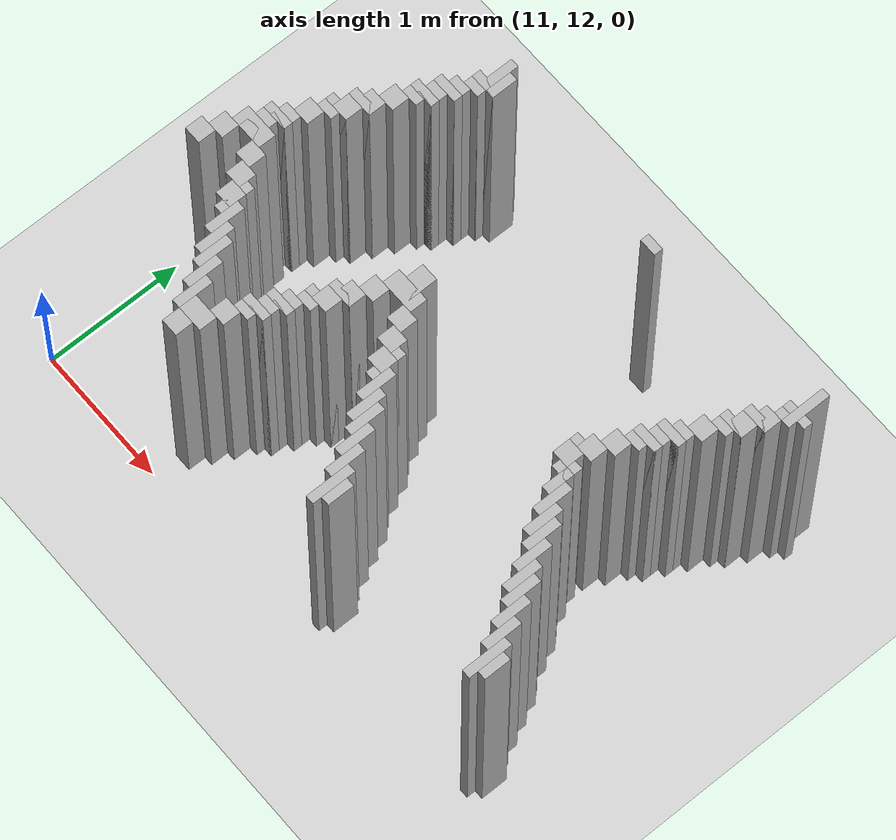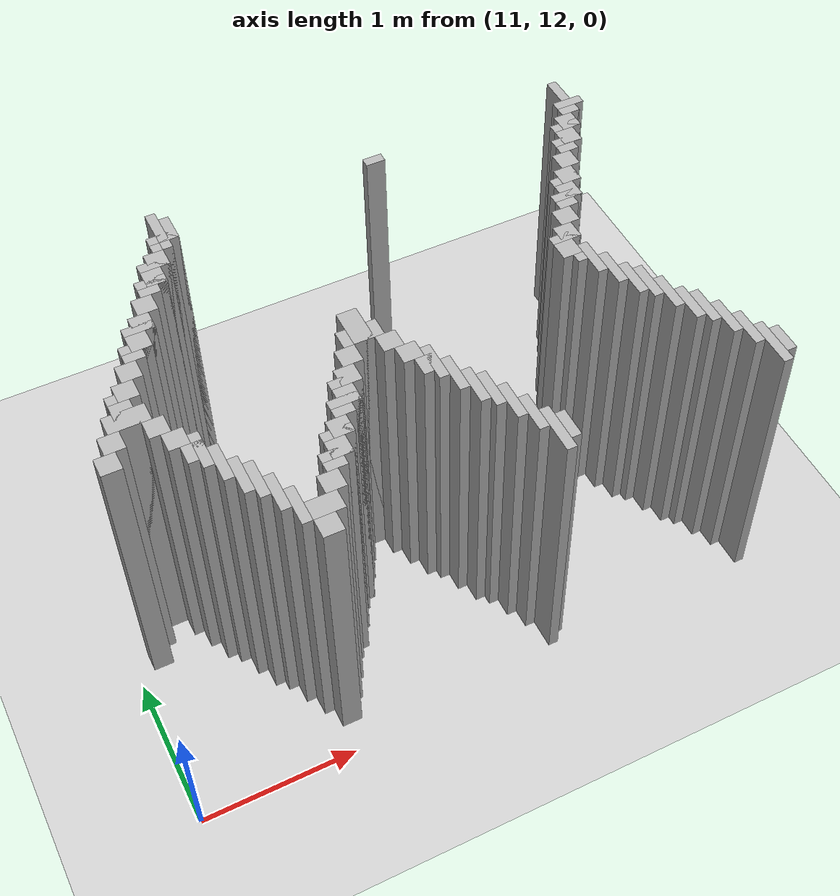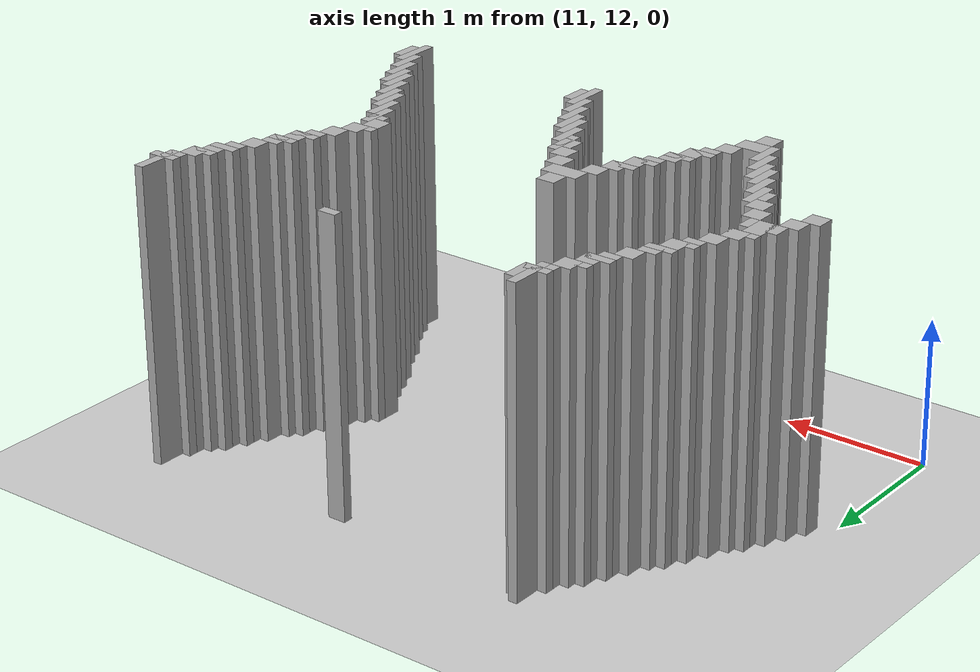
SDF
<sdf version="1.6">
 <world name="slam_world">
  <model name="ground_plane">
   <static>true</static>
   <link name="link">
    <collision name="collision">
     <geometry><plane><normal>0 0 1</normal><size>100 100</size></plane></geometry>
    </collision>
    <visual name="visual">
     <geometry><plane><normal>0 0 1</normal><size>100 100</size></plane></geometry>
     <material>
      <ambient>0.8 0.8 0.8 1</ambient>
      <diffuse>0.8 0.8 0.8 1</diffuse>
      <specular>0.8 0.8 0.8 1</specular>
     </material>
    </visual>
   </link>
  </model>
  <model name="wall_890">
   <static>true</static>
   <pose>12.03191489361702 14.712765957446807 1.0 0 0 0</pose>
   <link name="link">
    <collision name="collision">
     <geometry><box><size>0.06382978723404255 0.3191489361702127 2.0</size></box></geometry>
    </collision>
    <visual name="visual">
     <geometry><box><size>0.06382978723404255 0.3191489361702127 2.0</size></box></geometry>
     <material><ambient>0.5 0.5 0.5 1</ambient><diffuse>0.7 0.7 0.7 1</diffuse></material>
    </visual>
   </link>
  </model>
  <model name="wall_892">
   <static>true</static>
   <pose>14.840425531914892 14.712765957446807 1.0 0 0 0</pose>
   <link name="link">
    <collision name="collision">
     <geometry><box><size>0.06382978723404255 0.3191489361702127 2.0</size></box></geometry>
    </collision>
    <visual name="visual">
     <geometry><box><size>0.06382978723404255 0.3191489361702127 2.0</size></box></geometry>
     <material><ambient>0.5 0.5 0.5 1</ambient><diffuse>0.7 0.7 0.7 1</diffuse></material>
    </visual>
   </link>
  </model>
  <model name="wall_895">
   <static>true</static>
   <pose>12.095744680851062 14.712765957446807 1.0 0 0 0</pose>
   <link name="link">
    <collision name="collision">
     <geometry><box><size>0.06382978723404255 0.19148936170212766 2.0</size></box></geometry>
    </collision>
    <visual name="visual">
     <geometry><box><size>0.06382978723404255 0.19148936170212766 2.0</size></box></geometry>
     <material><ambient>0.5 0.5 0.5 1</ambient><diffuse>0.7 0.7 0.7 1</diffuse></material>
    </visual>
   </link>
  </model>
  <model name="wall_902">
   <static>true</static>
   <pose>13.468085106382977 14.712765957446807 1.0 0 0 0</pose>
   <link name="link">
    <collision name="collision">
     <geometry><box><size>0.1276595744680851 0.06382978723404255 2.0</size></box></geometry>
    </collision>
    <visual name="visual">
     <geometry><box><size>0.1276595744680851 0.06382978723404255 2.0</size></box></geometry>
     <material><ambient>0.5 0.5 0.5 1</ambient><diffuse>0.7 0.7 0.7 1</diffuse></material>
    </visual>
   </link>
  </model>
  <model name="wall_908">
   <static>true</static>
   <pose>12.03191489361702 14.648936170212766 1.0 0 0 0</pose>
   <link name="link">
    <collision name="collision">
     <geometry><box><size>0.19148936170212766 0.06382978723404255 2.0</size></box></geometry>
    </collision>
    <visual name="visual">
     <geometry><box><size>0.19148936170212766 0.06382978723404255 2.0</size></box></geometry>
     <material><ambient>0.5 0.5 0.5 1</ambient><diffuse>0.7 0.7 0.7 1</diffuse></material>
    </visual>
   </link>
  </model>
  <model name="wall_909">
   <static>true</static>
   <pose>14.840425531914892 14.648936170212766 1.0 0 0 0</pose>
   <link name="link">
    <collision name="collision">
     <geometry><box><size>0.19148936170212766 0.06382978723404255 2.0</size></box></geometry>
    </collision>
    <visual name="visual">
     <geometry><box><size>0.19148936170212766 0.06382978723404255 2.0</size></box></geometry>
     <material><ambient>0.5 0.5 0.5 1</ambient><diffuse>0.7 0.7 0.7 1</diffuse></material>
    </visual>
   </link>
  </model>
  <model name="wall_914">
   <static>true</static>
   <pose>11.999999999999998 14.585106382978722 1.0 0 0 0</pose>
   <link name="link">
    <collision name="collision">
     <geometry><box><size>0.1276595744680851 0.06382978723404255 2.0</size></box></geometry>
    </collision>
    <visual name="visual">
     <geometry><box><size>0.1276595744680851 0.06382978723404255 2.0</size></box></geometry>
     <material><ambient>0.5 0.5 0.5 1</ambient><diffuse>0.7 0.7 0.7 1</diffuse></material>
    </visual>
   </link>
  </model>
  <model name="wall_915">
   <static>true</static>
   <pose>14.808510638297872 14.585106382978722 1.0 0 0 0</pose>
   <link name="link">
    <collision name="collision">
     <geometry><box><size>0.1276595744680851 0.06382978723404255 2.0</size></box></geometry>
    </collision>
    <visual name="visual">
     <geometry><box><size>0.1276595744680851 0.06382978723404255 2.0</size></box></geometry>
     <material><ambient>0.5 0.5 0.5 1</ambient><diffuse>0.7 0.7 0.7 1</diffuse></material>
    </visual>
   </link>
  </model>
  <model name="wall_922">
   <static>true</static>
   <pose>11.936170212765957 14.489361702127658 1.0 0 0 0</pose>
   <link name="link">
    <collision name="collision">
     <geometry><box><size>0.1276595744680851 0.1276595744680851 2.0</size></box></geometry>
    </collision>
    <visual name="visual">
     <geometry><box><size>0.1276595744680851 0.1276595744680851 2.0</size></box></geometry>
     <material><ambient>0.5 0.5 0.5 1</ambient><diffuse>0.7 0.7 0.7 1</diffuse></material>
    </visual>
   </link>
  </model>
  <model name="wall_923">
   <static>true</static>
   <pose>14.744680851063828 14.489361702127658 1.0 0 0 0</pose>
   <link name="link">
    <collision name="collision">
     <geometry><box><size>0.1276595744680851 0.1276595744680851 2.0</size></box></geometry>
    </collision>
    <visual name="visual">
     <geometry><box><size>0.1276595744680851 0.1276595744680851 2.0</size></box></geometry>
     <material><ambient>0.5 0.5 0.5 1</ambient><diffuse>0.7 0.7 0.7 1</diffuse></material>
    </visual>
   </link>
  </model>
  <model name="wall_930">
   <static>true</static>
   <pose>11.904255319148936 14.457446808510637 1.0 0 0 0</pose>
   <link name="link">
    <collision name="collision">
     <geometry><box><size>0.19148936170212766 0.06382978723404255 2.0</size></box></geometry>
    </collision>
    <visual name="visual">
     <geometry><box><size>0.19148936170212766 0.06382978723404255 2.0</size></box></geometry>
     <material><ambient>0.5 0.5 0.5 1</ambient><diffuse>0.7 0.7 0.7 1</diffuse></material>
    </visual>
   </link>
  </model>
  <model name="wall_931">
   <static>true</static>
   <pose>14.712765957446807 14.457446808510637 1.0 0 0 0</pose>
   <link name="link">
    <collision name="collision">
     <geometry><box><size>0.19148936170212766 0.06382978723404255 2.0</size></box></geometry>
    </collision>
    <visual name="visual">
     <geometry><box><size>0.19148936170212766 0.06382978723404255 2.0</size></box></geometry>
     <material><ambient>0.5 0.5 0.5 1</ambient><diffuse>0.7 0.7 0.7 1</diffuse></material>
    </visual>
   </link>
  </model>
  <model name="wall_938">
   <static>true</static>
   <pose>11.872340425531913 14.361702127659573 1.0 0 0 0</pose>
   <link name="link">
    <collision name="collision">
     <geometry><box><size>0.1276595744680851 0.1276595744680851 2.0</size></box></geometry>
    </collision>
    <visual name="visual">
     <geometry><box><size>0.1276595744680851 0.1276595744680851 2.0</size></box></geometry>
     <material><ambient>0.5 0.5 0.5 1</ambient><diffuse>0.7 0.7 0.7 1</diffuse></material>
    </visual>
   </link>
  </model>
  <model name="wall_939">
   <static>true</static>
   <pose>14.680851063829786 14.361702127659573 1.0 0 0 0</pose>
   <link name="link">
    <collision name="collision">
     <geometry><box><size>0.1276595744680851 0.1276595744680851 2.0</size></box></geometry>
    </collision>
    <visual name="visual">
     <geometry><box><size>0.1276595744680851 0.1276595744680851 2.0</size></box></geometry>
     <material><ambient>0.5 0.5 0.5 1</ambient><diffuse>0.7 0.7 0.7 1</diffuse></material>
    </visual>
   </link>
  </model>
  <model name="wall_946">
   <static>true</static>
   <pose>11.840425531914892 14.329787234042552 1.0 0 0 0</pose>
   <link name="link">
    <collision name="collision">
     <geometry><box><size>0.19148936170212766 0.06382978723404255 2.0</size></box></geometry>
    </collision>
    <visual name="visual">
     <geometry><box><size>0.19148936170212766 0.06382978723404255 2.0</size></box></geometry>
     <material><ambient>0.5 0.5 0.5 1</ambient><diffuse>0.7 0.7 0.7 1</diffuse></material>
    </visual>
   </link>
  </model>
  <model name="wall_947">
   <static>true</static>
   <pose>14.648936170212766 14.329787234042552 1.0 0 0 0</pose>
   <link name="link">
    <collision name="collision">
     <geometry><box><size>0.19148936170212766 0.06382978723404255 2.0</size></box></geometry>
    </collision>
    <visual name="visual">
     <geometry><box><size>0.19148936170212766 0.06382978723404255 2.0</size></box></geometry>
     <material><ambient>0.5 0.5 0.5 1</ambient><diffuse>0.7 0.7 0.7 1</diffuse></material>
    </visual>
   </link>
  </model>
  <model name="wall_953">
   <static>true</static>
   <pose>11.808510638297872 14.265957446808509 1.0 0 0 0</pose>
   <link name="link">
    <collision name="collision">
     <geometry><box><size>0.1276595744680851 0.06382978723404255 2.0</size></box></geometry>
    </collision>
    <visual name="visual">
     <geometry><box><size>0.1276595744680851 0.06382978723404255 2.0</size></box></geometry>
     <material><ambient>0.5 0.5 0.5 1</ambient><diffuse>0.7 0.7 0.7 1</diffuse></material>
    </visual>
   </link>
  </model>
  <model name="wall_954">
   <static>true</static>
   <pose>14.617021276595743 14.265957446808509 1.0 0 0 0</pose>
   <link name="link">
    <collision name="collision">
     <geometry><box><size>0.1276595744680851 0.06382978723404255 2.0</size></box></geometry>
    </collision>
    <visual name="visual">
     <geometry><box><size>0.1276595744680851 0.06382978723404255 2.0</size></box></geometry>
     <material><ambient>0.5 0.5 0.5 1</ambient><diffuse>0.7 0.7 0.7 1</diffuse></material>
    </visual>
   </link>
  </model>
  <model name="wall_961">
   <static>true</static>
   <pose>11.744680851063828 14.170212765957446 1.0 0 0 0</pose>
   <link name="link">
    <collision name="collision">
     <geometry><box><size>0.1276595744680851 0.1276595744680851 2.0</size></box></geometry>
    </collision>
    <visual name="visual">
     <geometry><box><size>0.1276595744680851 0.1276595744680851 2.0</size></box></geometry>
     <material><ambient>0.5 0.5 0.5 1</ambient><diffuse>0.7 0.7 0.7 1</diffuse></material>
    </visual>
   </link>
  </model>
  <model name="wall_962">
   <static>true</static>
   <pose>14.553191489361701 14.170212765957446 1.0 0 0 0</pose>
   <link name="link">
    <collision name="collision">
     <geometry><box><size>0.1276595744680851 0.1276595744680851 2.0</size></box></geometry>
    </collision>
    <visual name="visual">
     <geometry><box><size>0.1276595744680851 0.1276595744680851 2.0</size></box></geometry>
     <material><ambient>0.5 0.5 0.5 1</ambient><diffuse>0.7 0.7 0.7 1</diffuse></material>
    </visual>
   </link>
  </model>
  <model name="wall_969">
   <static>true</static>
   <pose>11.680851063829786 14.042553191489361 1.0 0 0 0</pose>
   <link name="link">
    <collision name="collision">
     <geometry><box><size>0.1276595744680851 0.1276595744680851 2.0</size></box></geometry>
    </collision>
    <visual name="visual">
     <geometry><box><size>0.1276595744680851 0.1276595744680851 2.0</size></box></geometry>
     <material><ambient>0.5 0.5 0.5 1</ambient><diffuse>0.7 0.7 0.7 1</diffuse></material>
    </visual>
   </link>
  </model>
  <model name="wall_970">
   <static>true</static>
   <pose>14.489361702127658 14.042553191489361 1.0 0 0 0</pose>
   <link name="link">
    <collision name="collision">
     <geometry><box><size>0.1276595744680851 0.1276595744680851 2.0</size></box></geometry>
    </collision>
    <visual name="visual">
     <geometry><box><size>0.1276595744680851 0.1276595744680851 2.0</size></box></geometry>
     <material><ambient>0.5 0.5 0.5 1</ambient><diffuse>0.7 0.7 0.7 1</diffuse></material>
    </visual>
   </link>
  </model>
  <model name="wall_977">
   <static>true</static>
   <pose>11.648936170212766 14.010638297872338 1.0 0 0 0</pose>
   <link name="link">
    <collision name="collision">
     <geometry><box><size>0.19148936170212766 0.06382978723404255 2.0</size></box></geometry>
    </collision>
    <visual name="visual">
     <geometry><box><size>0.19148936170212766 0.06382978723404255 2.0</size></box></geometry>
     <material><ambient>0.5 0.5 0.5 1</ambient><diffuse>0.7 0.7 0.7 1</diffuse></material>
    </visual>
   </link>
  </model>
  <model name="wall_978">
   <static>true</static>
   <pose>14.457446808510637 14.010638297872338 1.0 0 0 0</pose>
   <link name="link">
    <collision name="collision">
     <geometry><box><size>0.19148936170212766 0.06382978723404255 2.0</size></box></geometry>
    </collision>
    <visual name="visual">
     <geometry><box><size>0.19148936170212766 0.06382978723404255 2.0</size></box></geometry>
     <material><ambient>0.5 0.5 0.5 1</ambient><diffuse>0.7 0.7 0.7 1</diffuse></material>
    </visual>
   </link>
  </model>
  <model name="wall_984">
   <static>true</static>
   <pose>11.617021276595743 13.914893617021276 1.0 0 0 0</pose>
   <link name="link">
    <collision name="collision">
     <geometry><box><size>0.1276595744680851 0.1276595744680851 2.0</size></box></geometry>
    </collision>
    <visual name="visual">
     <geometry><box><size>0.1276595744680851 0.1276595744680851 2.0</size></box></geometry>
     <material><ambient>0.5 0.5 0.5 1</ambient><diffuse>0.7 0.7 0.7 1</diffuse></material>
    </visual>
   </link>
  </model>
  <model name="wall_985">
   <static>true</static>
   <pose>14.425531914893616 13.914893617021276 1.0 0 0 0</pose>
   <link name="link">
    <collision name="collision">
     <geometry><box><size>0.1276595744680851 0.1276595744680851 2.0</size></box></geometry>
    </collision>
    <visual name="visual">
     <geometry><box><size>0.1276595744680851 0.1276595744680851 2.0</size></box></geometry>
     <material><ambient>0.5 0.5 0.5 1</ambient><diffuse>0.7 0.7 0.7 1</diffuse></material>
    </visual>
   </link>
  </model>
  <model name="wall_992">
   <static>true</static>
   <pose>11.585106382978722 13.882978723404253 1.0 0 0 0</pose>
   <link name="link">
    <collision name="collision">
     <geometry><box><size>0.19148936170212766 0.06382978723404255 2.0</size></box></geometry>
    </collision>
    <visual name="visual">
     <geometry><box><size>0.19148936170212766 0.06382978723404255 2.0</size></box></geometry>
     <material><ambient>0.5 0.5 0.5 1</ambient><diffuse>0.7 0.7 0.7 1</diffuse></material>
    </visual>
   </link>
  </model>
  <model name="wall_993">
   <static>true</static>
   <pose>14.393617021276595 13.882978723404253 1.0 0 0 0</pose>
   <link name="link">
    <collision name="collision">
     <geometry><box><size>0.19148936170212766 0.06382978723404255 2.0</size></box></geometry>
    </collision>
    <visual name="visual">
     <geometry><box><size>0.19148936170212766 0.06382978723404255 2.0</size></box></geometry>
     <material><ambient>0.5 0.5 0.5 1</ambient><diffuse>0.7 0.7 0.7 1</diffuse></material>
    </visual>
   </link>
  </model>
  <model name="wall_999">
   <static>true</static>
   <pose>11.553191489361701 13.819148936170212 1.0 0 0 0</pose>
   <link name="link">
    <collision name="collision">
     <geometry><box><size>0.1276595744680851 0.06382978723404255 2.0</size></box></geometry>
    </collision>
    <visual name="visual">
     <geometry><box><size>0.1276595744680851 0.06382978723404255 2.0</size></box></geometry>
     <material><ambient>0.5 0.5 0.5 1</ambient><diffuse>0.7 0.7 0.7 1</diffuse></material>
    </visual>
   </link>
  </model>
  <model name="wall_1000">
   <static>true</static>
   <pose>14.361702127659573 13.819148936170212 1.0 0 0 0</pose>
   <link name="link">
    <collision name="collision">
     <geometry><box><size>0.1276595744680851 0.06382978723404255 2.0</size></box></geometry>
    </collision>
    <visual name="visual">
     <geometry><box><size>0.1276595744680851 0.06382978723404255 2.0</size></box></geometry>
     <material><ambient>0.5 0.5 0.5 1</ambient><diffuse>0.7 0.7 0.7 1</diffuse></material>
    </visual>
   </link>
  </model>
  <model name="wall_1007">
   <static>true</static>
   <pose>11.489361702127658 13.723404255319148 1.0 0 0 0</pose>
   <link name="link">
    <collision name="collision">
     <geometry><box><size>0.1276595744680851 0.1276595744680851 2.0</size></box></geometry>
    </collision>
    <visual name="visual">
     <geometry><box><size>0.1276595744680851 0.1276595744680851 2.0</size></box></geometry>
     <material><ambient>0.5 0.5 0.5 1</ambient><diffuse>0.7 0.7 0.7 1</diffuse></material>
    </visual>
   </link>
  </model>
  <model name="wall_1008">
   <static>true</static>
   <pose>14.297872340425531 13.723404255319148 1.0 0 0 0</pose>
   <link name="link">
    <collision name="collision">
     <geometry><box><size>0.1276595744680851 0.1276595744680851 2.0</size></box></geometry>
    </collision>
    <visual name="visual">
     <geometry><box><size>0.1276595744680851 0.1276595744680851 2.0</size></box></geometry>
     <material><ambient>0.5 0.5 0.5 1</ambient><diffuse>0.7 0.7 0.7 1</diffuse></material>
    </visual>
   </link>
  </model>
  <model name="wall_1015">
   <static>true</static>
   <pose>11.425531914893616 13.595744680851062 1.0 0 0 0</pose>
   <link name="link">
    <collision name="collision">
     <geometry><box><size>0.1276595744680851 0.1276595744680851 2.0</size></box></geometry>
    </collision>
    <visual name="visual">
     <geometry><box><size>0.1276595744680851 0.1276595744680851 2.0</size></box></geometry>
     <material><ambient>0.5 0.5 0.5 1</ambient><diffuse>0.7 0.7 0.7 1</diffuse></material>
    </visual>
   </link>
  </model>
  <model name="wall_1016">
   <static>true</static>
   <pose>14.234042553191488 13.595744680851062 1.0 0 0 0</pose>
   <link name="link">
    <collision name="collision">
     <geometry><box><size>0.1276595744680851 0.1276595744680851 2.0</size></box></geometry>
    </collision>
    <visual name="visual">
     <geometry><box><size>0.1276595744680851 0.1276595744680851 2.0</size></box></geometry>
     <material><ambient>0.5 0.5 0.5 1</ambient><diffuse>0.7 0.7 0.7 1</diffuse></material>
    </visual>
   </link>
  </model>
  <model name="wall_1023">
   <static>true</static>
   <pose>11.393617021276595 13.563829787234042 1.0 0 0 0</pose>
   <link name="link">
    <collision name="collision">
     <geometry><box><size>0.19148936170212766 0.06382978723404255 2.0</size></box></geometry>
    </collision>
    <visual name="visual">
     <geometry><box><size>0.19148936170212766 0.06382978723404255 2.0</size></box></geometry>
     <material><ambient>0.5 0.5 0.5 1</ambient><diffuse>0.7 0.7 0.7 1</diffuse></material>
    </visual>
   </link>
  </model>
  <model name="wall_1024">
   <static>true</static>
   <pose>12.76595744680851 13.468085106382977 1.0 0 0 0</pose>
   <link name="link">
    <collision name="collision">
     <geometry><box><size>0.1276595744680851 0.2553191489361702 2.0</size></box></geometry>
    </collision>
    <visual name="visual">
     <geometry><box><size>0.1276595744680851 0.2553191489361702 2.0</size></box></geometry>
     <material><ambient>0.5 0.5 0.5 1</ambient><diffuse>0.7 0.7 0.7 1</diffuse></material>
    </visual>
   </link>
  </model>
  <model name="wall_1025">
   <static>true</static>
   <pose>14.202127659574467 13.563829787234042 1.0 0 0 0</pose>
   <link name="link">
    <collision name="collision">
     <geometry><box><size>0.19148936170212766 0.06382978723404255 2.0</size></box></geometry>
    </collision>
    <visual name="visual">
     <geometry><box><size>0.19148936170212766 0.06382978723404255 2.0</size></box></geometry>
     <material><ambient>0.5 0.5 0.5 1</ambient><diffuse>0.7 0.7 0.7 1</diffuse></material>
    </visual>
   </link>
  </model>
  <model name="wall_1032">
   <static>true</static>
   <pose>11.361702127659573 13.436170212765957 1.0 0 0 0</pose>
   <link name="link">
    <collision name="collision">
     <geometry><box><size>0.1276595744680851 0.19148936170212766 2.0</size></box></geometry>
    </collision>
    <visual name="visual">
     <geometry><box><size>0.1276595744680851 0.19148936170212766 2.0</size></box></geometry>
     <material><ambient>0.5 0.5 0.5 1</ambient><diffuse>0.7 0.7 0.7 1</diffuse></material>
    </visual>
   </link>
  </model>
  <model name="wall_1033">
   <static>true</static>
   <pose>14.170212765957446 13.468085106382977 1.0 0 0 0</pose>
   <link name="link">
    <collision name="collision">
     <geometry><box><size>0.1276595744680851 0.1276595744680851 2.0</size></box></geometry>
    </collision>
    <visual name="visual">
     <geometry><box><size>0.1276595744680851 0.1276595744680851 2.0</size></box></geometry>
     <material><ambient>0.5 0.5 0.5 1</ambient><diffuse>0.7 0.7 0.7 1</diffuse></material>
    </visual>
   </link>
  </model>
  <model name="wall_1040">
   <static>true</static>
   <pose>11.361702127659573 13.404255319148936 1.0 0 0 0</pose>
   <link name="link">
    <collision name="collision">
     <geometry><box><size>0.2553191489361702 0.1276595744680851 2.0</size></box></geometry>
    </collision>
    <visual name="visual">
     <geometry><box><size>0.2553191489361702 0.1276595744680851 2.0</size></box></geometry>
     <material><ambient>0.5 0.5 0.5 1</ambient><diffuse>0.7 0.7 0.7 1</diffuse></material>
    </visual>
   </link>
  </model>
  <model name="wall_1041">
   <static>true</static>
   <pose>12.76595744680851 13.404255319148936 1.0 0 0 0</pose>
   <link name="link">
    <collision name="collision">
     <geometry><box><size>0.2553191489361702 0.1276595744680851 2.0</size></box></geometry>
    </collision>
    <visual name="visual">
     <geometry><box><size>0.2553191489361702 0.1276595744680851 2.0</size></box></geometry>
     <material><ambient>0.5 0.5 0.5 1</ambient><diffuse>0.7 0.7 0.7 1</diffuse></material>
    </visual>
   </link>
  </model>
  <model name="wall_1042">
   <static>true</static>
   <pose>14.265957446808509 13.340425531914892 1.0 0 0 0</pose>
   <link name="link">
    <collision name="collision">
     <geometry><box><size>0.06382978723404255 0.2553191489361702 2.0</size></box></geometry>
    </collision>
    <visual name="visual">
     <geometry><box><size>0.06382978723404255 0.2553191489361702 2.0</size></box></geometry>
     <material><ambient>0.5 0.5 0.5 1</ambient><diffuse>0.7 0.7 0.7 1</diffuse></material>
    </visual>
   </link>
  </model>
  <model name="wall_1048">
   <static>true</static>
   <pose>14.234042553191488 13.372340425531913 1.0 0 0 0</pose>
   <link name="link">
    <collision name="collision">
     <geometry><box><size>0.1276595744680851 0.06382978723404255 2.0</size></box></geometry>
    </collision>
    <visual name="visual">
     <geometry><box><size>0.1276595744680851 0.06382978723404255 2.0</size></box></geometry>
     <material><ambient>0.5 0.5 0.5 1</ambient><diffuse>0.7 0.7 0.7 1</diffuse></material>
    </visual>
   </link>
  </model>
  <model name="wall_1054">
   <static>true</static>
   <pose>11.234042553191488 13.27659574468085 1.0 0 0 0</pose>
   <link name="link">
    <collision name="collision">
     <geometry><box><size>0.1276595744680851 0.1276595744680851 2.0</size></box></geometry>
    </collision>
    <visual name="visual">
     <geometry><box><size>0.1276595744680851 0.1276595744680851 2.0</size></box></geometry>
     <material><ambient>0.5 0.5 0.5 1</ambient><diffuse>0.7 0.7 0.7 1</diffuse></material>
    </visual>
   </link>
  </model>
  <model name="wall_1055">
   <static>true</static>
   <pose>11.489361702127658 13.27659574468085 1.0 0 0 0</pose>
   <link name="link">
    <collision name="collision">
     <geometry><box><size>0.1276595744680851 0.1276595744680851 2.0</size></box></geometry>
    </collision>
    <visual name="visual">
     <geometry><box><size>0.1276595744680851 0.1276595744680851 2.0</size></box></geometry>
     <material><ambient>0.5 0.5 0.5 1</ambient><diffuse>0.7 0.7 0.7 1</diffuse></material>
    </visual>
   </link>
  </model>
  <model name="wall_1056">
   <static>true</static>
   <pose>12.638297872340425 13.27659574468085 1.0 0 0 0</pose>
   <link name="link">
    <collision name="collision">
     <geometry><box><size>0.1276595744680851 0.1276595744680851 2.0</size></box></geometry>
    </collision>
    <visual name="visual">
     <geometry><box><size>0.1276595744680851 0.1276595744680851 2.0</size></box></geometry>
     <material><ambient>0.5 0.5 0.5 1</ambient><diffuse>0.7 0.7 0.7 1</diffuse></material>
    </visual>
   </link>
  </model>
  <model name="wall_1057">
   <static>true</static>
   <pose>12.893617021276595 13.27659574468085 1.0 0 0 0</pose>
   <link name="link">
    <collision name="collision">
     <geometry><box><size>0.1276595744680851 0.1276595744680851 2.0</size></box></geometry>
    </collision>
    <visual name="visual">
     <geometry><box><size>0.1276595744680851 0.1276595744680851 2.0</size></box></geometry>
     <material><ambient>0.5 0.5 0.5 1</ambient><diffuse>0.7 0.7 0.7 1</diffuse></material>
    </visual>
   </link>
  </model>
  <model name="wall_1058">
   <static>true</static>
   <pose>14.329787234042552 13.212765957446807 1.0 0 0 0</pose>
   <link name="link">
    <collision name="collision">
     <geometry><box><size>0.06382978723404255 0.2553191489361702 2.0</size></box></geometry>
    </collision>
    <visual name="visual">
     <geometry><box><size>0.06382978723404255 0.2553191489361702 2.0</size></box></geometry>
     <material><ambient>0.5 0.5 0.5 1</ambient><diffuse>0.7 0.7 0.7 1</diffuse></material>
    </visual>
   </link>
  </model>
  <model name="wall_1064">
   <static>true</static>
   <pose>11.170212765957446 13.148936170212766 1.0 0 0 0</pose>
   <link name="link">
    <collision name="collision">
     <geometry><box><size>0.1276595744680851 0.1276595744680851 2.0</size></box></geometry>
    </collision>
    <visual name="visual">
     <geometry><box><size>0.1276595744680851 0.1276595744680851 2.0</size></box></geometry>
     <material><ambient>0.5 0.5 0.5 1</ambient><diffuse>0.7 0.7 0.7 1</diffuse></material>
    </visual>
   </link>
  </model>
  <model name="wall_1065">
   <static>true</static>
   <pose>11.553191489361701 13.148936170212766 1.0 0 0 0</pose>
   <link name="link">
    <collision name="collision">
     <geometry><box><size>0.1276595744680851 0.1276595744680851 2.0</size></box></geometry>
    </collision>
    <visual name="visual">
     <geometry><box><size>0.1276595744680851 0.1276595744680851 2.0</size></box></geometry>
     <material><ambient>0.5 0.5 0.5 1</ambient><diffuse>0.7 0.7 0.7 1</diffuse></material>
    </visual>
   </link>
  </model>
  <model name="wall_1066">
   <static>true</static>
   <pose>12.574468085106382 13.148936170212766 1.0 0 0 0</pose>
   <link name="link">
    <collision name="collision">
     <geometry><box><size>0.1276595744680851 0.1276595744680851 2.0</size></box></geometry>
    </collision>
    <visual name="visual">
     <geometry><box><size>0.1276595744680851 0.1276595744680851 2.0</size></box></geometry>
     <material><ambient>0.5 0.5 0.5 1</ambient><diffuse>0.7 0.7 0.7 1</diffuse></material>
    </visual>
   </link>
  </model>
  <model name="wall_1067">
   <static>true</static>
   <pose>12.957446808510637 13.148936170212766 1.0 0 0 0</pose>
   <link name="link">
    <collision name="collision">
     <geometry><box><size>0.1276595744680851 0.1276595744680851 2.0</size></box></geometry>
    </collision>
    <visual name="visual">
     <geometry><box><size>0.1276595744680851 0.1276595744680851 2.0</size></box></geometry>
     <material><ambient>0.5 0.5 0.5 1</ambient><diffuse>0.7 0.7 0.7 1</diffuse></material>
    </visual>
   </link>
  </model>
  <model name="wall_1068">
   <static>true</static>
   <pose>14.393617021276595 13.085106382978722 1.0 0 0 0</pose>
   <link name="link">
    <collision name="collision">
     <geometry><box><size>0.06382978723404255 0.2553191489361702 2.0</size></box></geometry>
    </collision>
    <visual name="visual">
     <geometry><box><size>0.06382978723404255 0.2553191489361702 2.0</size></box></geometry>
     <material><ambient>0.5 0.5 0.5 1</ambient><diffuse>0.7 0.7 0.7 1</diffuse></material>
    </visual>
   </link>
  </model>
  <model name="wall_1075">
   <static>true</static>
   <pose>11.648936170212766 13.02127659574468 1.0 0 0 0</pose>
   <link name="link">
    <collision name="collision">
     <geometry><box><size>0.06382978723404255 0.2553191489361702 2.0</size></box></geometry>
    </collision>
    <visual name="visual">
     <geometry><box><size>0.06382978723404255 0.2553191489361702 2.0</size></box></geometry>
     <material><ambient>0.5 0.5 0.5 1</ambient><diffuse>0.7 0.7 0.7 1</diffuse></material>
    </visual>
   </link>
  </model>
  <model name="wall_1076">
   <static>true</static>
   <pose>12.542553191489361 13.117021276595743 1.0 0 0 0</pose>
   <link name="link">
    <collision name="collision">
     <geometry><box><size>0.19148936170212766 0.06382978723404255 2.0</size></box></geometry>
    </collision>
    <visual name="visual">
     <geometry><box><size>0.19148936170212766 0.06382978723404255 2.0</size></box></geometry>
     <material><ambient>0.5 0.5 0.5 1</ambient><diffuse>0.7 0.7 0.7 1</diffuse></material>
    </visual>
   </link>
  </model>
  <model name="wall_1077">
   <static>true</static>
   <pose>13.053191489361701 13.02127659574468 1.0 0 0 0</pose>
   <link name="link">
    <collision name="collision">
     <geometry><box><size>0.06382978723404255 0.2553191489361702 2.0</size></box></geometry>
    </collision>
    <visual name="visual">
     <geometry><box><size>0.06382978723404255 0.2553191489361702 2.0</size></box></geometry>
     <material><ambient>0.5 0.5 0.5 1</ambient><diffuse>0.7 0.7 0.7 1</diffuse></material>
    </visual>
   </link>
  </model>
  <model name="wall_1078">
   <static>true</static>
   <pose>14.457446808510637 13.02127659574468 1.0 0 0 0</pose>
   <link name="link">
    <collision name="collision">
     <geometry><box><size>0.06382978723404255 0.2553191489361702 2.0</size></box></geometry>
    </collision>
    <visual name="visual">
     <geometry><box><size>0.06382978723404255 0.2553191489361702 2.0</size></box></geometry>
     <material><ambient>0.5 0.5 0.5 1</ambient><diffuse>0.7 0.7 0.7 1</diffuse></material>
    </visual>
   </link>
  </model>
  <model name="wall_1083">
   <static>true</static>
   <pose>11.617021276595743 13.02127659574468 1.0 0 0 0</pose>
   <link name="link">
    <collision name="collision">
     <geometry><box><size>0.1276595744680851 0.1276595744680851 2.0</size></box></geometry>
    </collision>
    <visual name="visual">
     <geometry><box><size>0.1276595744680851 0.1276595744680851 2.0</size></box></geometry>
     <material><ambient>0.5 0.5 0.5 1</ambient><diffuse>0.7 0.7 0.7 1</diffuse></material>
    </visual>
   </link>
  </model>
  <model name="wall_1084">
   <static>true</static>
   <pose>12.51063829787234 13.02127659574468 1.0 0 0 0</pose>
   <link name="link">
    <collision name="collision">
     <geometry><box><size>0.1276595744680851 0.1276595744680851 2.0</size></box></geometry>
    </collision>
    <visual name="visual">
     <geometry><box><size>0.1276595744680851 0.1276595744680851 2.0</size></box></geometry>
     <material><ambient>0.5 0.5 0.5 1</ambient><diffuse>0.7 0.7 0.7 1</diffuse></material>
    </visual>
   </link>
  </model>
  <model name="wall_1085">
   <static>true</static>
   <pose>13.02127659574468 13.02127659574468 1.0 0 0 0</pose>
   <link name="link">
    <collision name="collision">
     <geometry><box><size>0.1276595744680851 0.1276595744680851 2.0</size></box></geometry>
    </collision>
    <visual name="visual">
     <geometry><box><size>0.1276595744680851 0.1276595744680851 2.0</size></box></geometry>
     <material><ambient>0.5 0.5 0.5 1</ambient><diffuse>0.7 0.7 0.7 1</diffuse></material>
    </visual>
   </link>
  </model>
  <model name="wall_1092">
   <static>true</static>
   <pose>11.712765957446807 12.893617021276595 1.0 0 0 0</pose>
   <link name="link">
    <collision name="collision">
     <geometry><box><size>0.06382978723404255 0.2553191489361702 2.0</size></box></geometry>
    </collision>
    <visual name="visual">
     <geometry><box><size>0.06382978723404255 0.2553191489361702 2.0</size></box></geometry>
     <material><ambient>0.5 0.5 0.5 1</ambient><diffuse>0.7 0.7 0.7 1</diffuse></material>
    </visual>
   </link>
  </model>
  <model name="wall_1093">
   <static>true</static>
   <pose>12.478723404255318 12.989361702127658 1.0 0 0 0</pose>
   <link name="link">
    <collision name="collision">
     <geometry><box><size>0.19148936170212766 0.06382978723404255 2.0</size></box></geometry>
    </collision>
    <visual name="visual">
     <geometry><box><size>0.19148936170212766 0.06382978723404255 2.0</size></box></geometry>
     <material><ambient>0.5 0.5 0.5 1</ambient><diffuse>0.7 0.7 0.7 1</diffuse></material>
    </visual>
   </link>
  </model>
  <model name="wall_1094">
   <static>true</static>
   <pose>13.117021276595743 12.893617021276595 1.0 0 0 0</pose>
   <link name="link">
    <collision name="collision">
     <geometry><box><size>0.06382978723404255 0.2553191489361702 2.0</size></box></geometry>
    </collision>
    <visual name="visual">
     <geometry><box><size>0.06382978723404255 0.2553191489361702 2.0</size></box></geometry>
     <material><ambient>0.5 0.5 0.5 1</ambient><diffuse>0.7 0.7 0.7 1</diffuse></material>
    </visual>
   </link>
  </model>
  <model name="wall_1095">
   <static>true</static>
   <pose>14.52127659574468 12.893617021276595 1.0 0 0 0</pose>
   <link name="link">
    <collision name="collision">
     <geometry><box><size>0.06382978723404255 0.2553191489361702 2.0</size></box></geometry>
    </collision>
    <visual name="visual">
     <geometry><box><size>0.06382978723404255 0.2553191489361702 2.0</size></box></geometry>
     <material><ambient>0.5 0.5 0.5 1</ambient><diffuse>0.7 0.7 0.7 1</diffuse></material>
    </visual>
   </link>
  </model>
  <model name="wall_1098">
   <static>true</static>
   <pose>12.446808510638297 12.925531914893616 1.0 0 0 0</pose>
   <link name="link">
    <collision name="collision">
     <geometry><box><size>0.1276595744680851 0.06382978723404255 2.0</size></box></geometry>
    </collision>
    <visual name="visual">
     <geometry><box><size>0.1276595744680851 0.06382978723404255 2.0</size></box></geometry>
     <material><ambient>0.5 0.5 0.5 1</ambient><diffuse>0.7 0.7 0.7 1</diffuse></material>
    </visual>
   </link>
  </model>
  <model name="wall_1105">
   <static>true</static>
   <pose>11.77659574468085 12.76595744680851 1.0 0 0 0</pose>
   <link name="link">
    <collision name="collision">
     <geometry><box><size>0.06382978723404255 0.2553191489361702 2.0</size></box></geometry>
    </collision>
    <visual name="visual">
     <geometry><box><size>0.06382978723404255 0.2553191489361702 2.0</size></box></geometry>
     <material><ambient>0.5 0.5 0.5 1</ambient><diffuse>0.7 0.7 0.7 1</diffuse></material>
    </visual>
   </link>
  </model>
  <model name="wall_1106">
   <static>true</static>
   <pose>12.382978723404255 12.829787234042552 1.0 0 0 0</pose>
   <link name="link">
    <collision name="collision">
     <geometry><box><size>0.1276595744680851 0.1276595744680851 2.0</size></box></geometry>
    </collision>
    <visual name="visual">
     <geometry><box><size>0.1276595744680851 0.1276595744680851 2.0</size></box></geometry>
     <material><ambient>0.5 0.5 0.5 1</ambient><diffuse>0.7 0.7 0.7 1</diffuse></material>
    </visual>
   </link>
  </model>
  <model name="wall_1107">
   <static>true</static>
   <pose>13.180851063829786 12.76595744680851 1.0 0 0 0</pose>
   <link name="link">
    <collision name="collision">
     <geometry><box><size>0.06382978723404255 0.2553191489361702 2.0</size></box></geometry>
    </collision>
    <visual name="visual">
     <geometry><box><size>0.06382978723404255 0.2553191489361702 2.0</size></box></geometry>
     <material><ambient>0.5 0.5 0.5 1</ambient><diffuse>0.7 0.7 0.7 1</diffuse></material>
    </visual>
   </link>
  </model>
  <model name="wall_1108">
   <static>true</static>
   <pose>14.585106382978722 12.76595744680851 1.0 0 0 0</pose>
   <link name="link">
    <collision name="collision">
     <geometry><box><size>0.06382978723404255 0.2553191489361702 2.0</size></box></geometry>
    </collision>
    <visual name="visual">
     <geometry><box><size>0.06382978723404255 0.2553191489361702 2.0</size></box></geometry>
     <material><ambient>0.5 0.5 0.5 1</ambient><diffuse>0.7 0.7 0.7 1</diffuse></material>
    </visual>
   </link>
  </model>
  <model name="wall_1115">
   <static>true</static>
   <pose>11.840425531914892 12.702127659574467 1.0 0 0 0</pose>
   <link name="link">
    <collision name="collision">
     <geometry><box><size>0.06382978723404255 0.2553191489361702 2.0</size></box></geometry>
    </collision>
    <visual name="visual">
     <geometry><box><size>0.06382978723404255 0.2553191489361702 2.0</size></box></geometry>
     <material><ambient>0.5 0.5 0.5 1</ambient><diffuse>0.7 0.7 0.7 1</diffuse></material>
    </visual>
   </link>
  </model>
  <model name="wall_1116">
   <static>true</static>
   <pose>12.351063829787233 12.797872340425531 1.0 0 0 0</pose>
   <link name="link">
    <collision name="collision">
     <geometry><box><size>0.19148936170212766 0.06382978723404255 2.0</size></box></geometry>
    </collision>
    <visual name="visual">
     <geometry><box><size>0.19148936170212766 0.06382978723404255 2.0</size></box></geometry>
     <material><ambient>0.5 0.5 0.5 1</ambient><diffuse>0.7 0.7 0.7 1</diffuse></material>
    </visual>
   </link>
  </model>
  <model name="wall_1117">
   <static>true</static>
   <pose>13.244680851063828 12.702127659574467 1.0 0 0 0</pose>
   <link name="link">
    <collision name="collision">
     <geometry><box><size>0.06382978723404255 0.2553191489361702 2.0</size></box></geometry>
    </collision>
    <visual name="visual">
     <geometry><box><size>0.06382978723404255 0.2553191489361702 2.0</size></box></geometry>
     <material><ambient>0.5 0.5 0.5 1</ambient><diffuse>0.7 0.7 0.7 1</diffuse></material>
    </visual>
   </link>
  </model>
  <model name="wall_1118">
   <static>true</static>
   <pose>14.648936170212766 12.702127659574467 1.0 0 0 0</pose>
   <link name="link">
    <collision name="collision">
     <geometry><box><size>0.06382978723404255 0.2553191489361702 2.0</size></box></geometry>
    </collision>
    <visual name="visual">
     <geometry><box><size>0.06382978723404255 0.2553191489361702 2.0</size></box></geometry>
     <material><ambient>0.5 0.5 0.5 1</ambient><diffuse>0.7 0.7 0.7 1</diffuse></material>
    </visual>
   </link>
  </model>
  <model name="wall_1121">
   <static>true</static>
   <pose>12.319148936170212 12.702127659574467 1.0 0 0 0</pose>
   <link name="link">
    <collision name="collision">
     <geometry><box><size>0.1276595744680851 0.1276595744680851 2.0</size></box></geometry>
    </collision>
    <visual name="visual">
     <geometry><box><size>0.1276595744680851 0.1276595744680851 2.0</size></box></geometry>
     <material><ambient>0.5 0.5 0.5 1</ambient><diffuse>0.7 0.7 0.7 1</diffuse></material>
    </visual>
   </link>
  </model>
  <model name="wall_1128">
   <static>true</static>
   <pose>11.904255319148936 12.574468085106382 1.0 0 0 0</pose>
   <link name="link">
    <collision name="collision">
     <geometry><box><size>0.06382978723404255 0.2553191489361702 2.0</size></box></geometry>
    </collision>
    <visual name="visual">
     <geometry><box><size>0.06382978723404255 0.2553191489361702 2.0</size></box></geometry>
     <material><ambient>0.5 0.5 0.5 1</ambient><diffuse>0.7 0.7 0.7 1</diffuse></material>
    </visual>
   </link>
  </model>
  <model name="wall_1129">
   <static>true</static>
   <pose>12.287234042553191 12.670212765957446 1.0 0 0 0</pose>
   <link name="link">
    <collision name="collision">
     <geometry><box><size>0.19148936170212766 0.06382978723404255 2.0</size></box></geometry>
    </collision>
    <visual name="visual">
     <geometry><box><size>0.19148936170212766 0.06382978723404255 2.0</size></box></geometry>
     <material><ambient>0.5 0.5 0.5 1</ambient><diffuse>0.7 0.7 0.7 1</diffuse></material>
    </visual>
   </link>
  </model>
  <model name="wall_1130">
   <static>true</static>
   <pose>13.308510638297872 12.574468085106382 1.0 0 0 0</pose>
   <link name="link">
    <collision name="collision">
     <geometry><box><size>0.06382978723404255 0.2553191489361702 2.0</size></box></geometry>
    </collision>
    <visual name="visual">
     <geometry><box><size>0.06382978723404255 0.2553191489361702 2.0</size></box></geometry>
     <material><ambient>0.5 0.5 0.5 1</ambient><diffuse>0.7 0.7 0.7 1</diffuse></material>
    </visual>
   </link>
  </model>
  <model name="wall_1131">
   <static>true</static>
   <pose>14.712765957446807 12.574468085106382 1.0 0 0 0</pose>
   <link name="link">
    <collision name="collision">
     <geometry><box><size>0.06382978723404255 0.2553191489361702 2.0</size></box></geometry>
    </collision>
    <visual name="visual">
     <geometry><box><size>0.06382978723404255 0.2553191489361702 2.0</size></box></geometry>
     <material><ambient>0.5 0.5 0.5 1</ambient><diffuse>0.7 0.7 0.7 1</diffuse></material>
    </visual>
   </link>
  </model>
  <model name="wall_1134">
   <static>true</static>
   <pose>12.25531914893617 12.606382978723403 1.0 0 0 0</pose>
   <link name="link">
    <collision name="collision">
     <geometry><box><size>0.1276595744680851 0.06382978723404255 2.0</size></box></geometry>
    </collision>
    <visual name="visual">
     <geometry><box><size>0.1276595744680851 0.06382978723404255 2.0</size></box></geometry>
     <material><ambient>0.5 0.5 0.5 1</ambient><diffuse>0.7 0.7 0.7 1</diffuse></material>
    </visual>
   </link>
  </model>
  <model name="wall_1141">
   <static>true</static>
   <pose>11.968085106382977 12.446808510638297 1.0 0 0 0</pose>
   <link name="link">
    <collision name="collision">
     <geometry><box><size>0.06382978723404255 0.2553191489361702 2.0</size></box></geometry>
    </collision>
    <visual name="visual">
     <geometry><box><size>0.06382978723404255 0.2553191489361702 2.0</size></box></geometry>
     <material><ambient>0.5 0.5 0.5 1</ambient><diffuse>0.7 0.7 0.7 1</diffuse></material>
    </visual>
   </link>
  </model>
  <model name="wall_1142">
   <static>true</static>
   <pose>12.191489361702127 12.51063829787234 1.0 0 0 0</pose>
   <link name="link">
    <collision name="collision">
     <geometry><box><size>0.1276595744680851 0.1276595744680851 2.0</size></box></geometry>
    </collision>
    <visual name="visual">
     <geometry><box><size>0.1276595744680851 0.1276595744680851 2.0</size></box></geometry>
     <material><ambient>0.5 0.5 0.5 1</ambient><diffuse>0.7 0.7 0.7 1</diffuse></material>
    </visual>
   </link>
  </model>
  <model name="wall_1143">
   <static>true</static>
   <pose>13.372340425531913 12.446808510638297 1.0 0 0 0</pose>
   <link name="link">
    <collision name="collision">
     <geometry><box><size>0.06382978723404255 0.2553191489361702 2.0</size></box></geometry>
    </collision>
    <visual name="visual">
     <geometry><box><size>0.06382978723404255 0.2553191489361702 2.0</size></box></geometry>
     <material><ambient>0.5 0.5 0.5 1</ambient><diffuse>0.7 0.7 0.7 1</diffuse></material>
    </visual>
   </link>
  </model>
  <model name="wall_1144">
   <static>true</static>
   <pose>14.77659574468085 12.446808510638297 1.0 0 0 0</pose>
   <link name="link">
    <collision name="collision">
     <geometry><box><size>0.06382978723404255 0.2553191489361702 2.0</size></box></geometry>
    </collision>
    <visual name="visual">
     <geometry><box><size>0.06382978723404255 0.2553191489361702 2.0</size></box></geometry>
     <material><ambient>0.5 0.5 0.5 1</ambient><diffuse>0.7 0.7 0.7 1</diffuse></material>
    </visual>
   </link>
  </model>
  <model name="wall_1150">
   <static>true</static>
   <pose>12.095744680851062 12.382978723404255 1.0 0 0 0</pose>
   <link name="link">
    <collision name="collision">
     <geometry><box><size>0.19148936170212766 0.1276595744680851 2.0</size></box></geometry>
    </collision>
    <visual name="visual">
     <geometry><box><size>0.19148936170212766 0.1276595744680851 2.0</size></box></geometry>
     <material><ambient>0.5 0.5 0.5 1</ambient><diffuse>0.7 0.7 0.7 1</diffuse></material>
    </visual>
   </link>
  </model>
  <model name="wall_1151">
   <static>true</static>
   <pose>13.436170212765957 12.287234042553191 1.0 0 0 0</pose>
   <link name="link">
    <collision name="collision">
     <geometry><box><size>0.06382978723404255 0.3191489361702127 2.0</size></box></geometry>
    </collision>
    <visual name="visual">
     <geometry><box><size>0.06382978723404255 0.3191489361702127 2.0</size></box></geometry>
     <material><ambient>0.5 0.5 0.5 1</ambient><diffuse>0.7 0.7 0.7 1</diffuse></material>
    </visual>
   </link>
  </model>
  <model name="wall_1152">
   <static>true</static>
   <pose>14.840425531914892 12.287234042553191 1.0 0 0 0</pose>
   <link name="link">
    <collision name="collision">
     <geometry><box><size>0.06382978723404255 0.3191489361702127 2.0</size></box></geometry>
    </collision>
    <visual name="visual">
     <geometry><box><size>0.06382978723404255 0.3191489361702127 2.0</size></box></geometry>
     <material><ambient>0.5 0.5 0.5 1</ambient><diffuse>0.7 0.7 0.7 1</diffuse></material>
    </visual>
   </link>
  </model>
  <model name="wall_1157">
   <static>true</static>
   <pose>13.499999999999998 12.287234042553191 1.0 0 0 0</pose>
   <link name="link">
    <collision name="collision">
     <geometry><box><size>0.06382978723404255 0.19148936170212766 2.0</size></box></geometry>
    </collision>
    <visual name="visual">
     <geometry><box><size>0.06382978723404255 0.19148936170212766 2.0</size></box></geometry>
     <material><ambient>0.5 0.5 0.5 1</ambient><diffuse>0.7 0.7 0.7 1</diffuse></material>
    </visual>
   </link>
  </model>
  <model name="wall_1158">
   <static>true</static>
   <pose>14.904255319148936 12.287234042553191 1.0 0 0 0</pose>
   <link name="link">
    <collision name="collision">
     <geometry><box><size>0.06382978723404255 0.19148936170212766 2.0</size></box></geometry>
    </collision>
    <visual name="visual">
     <geometry><box><size>0.06382978723404255 0.19148936170212766 2.0</size></box></geometry>
     <material><ambient>0.5 0.5 0.5 1</ambient><diffuse>0.7 0.7 0.7 1</diffuse></material>
    </visual>
   </link>
  </model>
  <model name="wall_1164">
   <static>true</static>
   <pose>12.063829787234042 12.25531914893617 1.0 0 0 0</pose>
   <link name="link">
    <collision name="collision">
     <geometry><box><size>0.1276595744680851 0.1276595744680851 2.0</size></box></geometry>
    </collision>
    <visual name="visual">
     <geometry><box><size>0.1276595744680851 0.1276595744680851 2.0</size></box></geometry>
     <material><ambient>0.5 0.5 0.5 1</ambient><diffuse>0.7 0.7 0.7 1</diffuse></material>
    </visual>
   </link>
  </model>
 </world>
</sdf>
